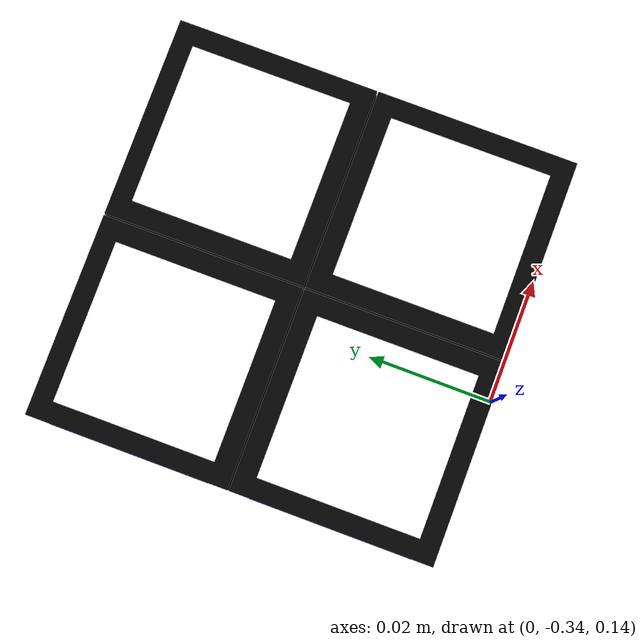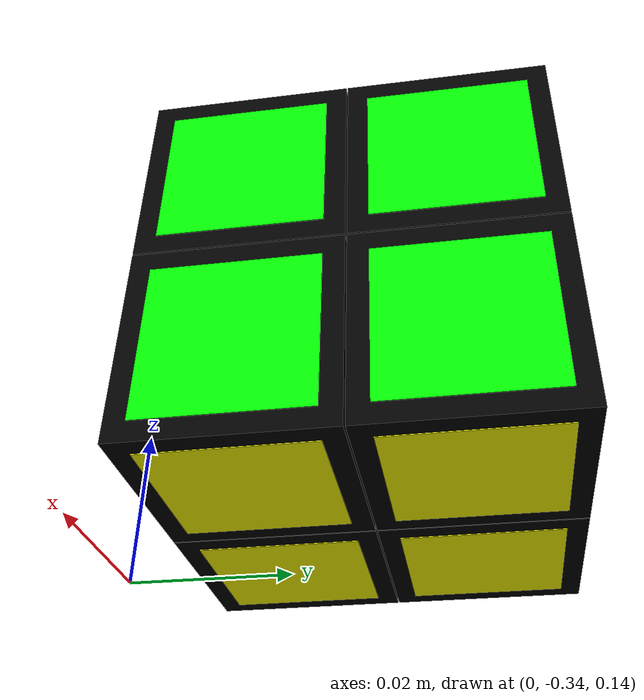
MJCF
<mujoco model="rubiks_cube">
    <asset>
        <texture type="cube" name="tex" builtin="checker" width="100" height="100" rgb1="1 1 1" rgb2="0 0 0"/>
        <material name="mat" texture="tex" specular="1" shininess="0.5"/>
    </asset>

    <worldbody>
        <!-- Center link -->
        <body name="center" pos="0 -0.31 0.17">
            <joint type="free"/>
            <inertial pos="0 0 0" quat="0.0111438 0.707126 -0.00935374 0.706938" mass="5.204" diaginertia="0.0447997 0.0366257 0.0162187" />
            <!-- Each box with its respective visuals, collisions, and inertial properties -->
            <body name="box_0_0_0" pos="-0.0126 -0.0126 -0.0126">
                <joint name="joint_ball_0_0_0" pos="0.0126 0.0126 0.0126" type="hinge" axis="1 0 0" />
                <inertial mass="0.03" pos="0 0 0" diaginertia="0.0003125 0.0003125 0.0003125"/>
                <geom type="box" size="0.0125 0.0125 0.0125" rgba="0 0 0 1"/>
                <geom type="box" pos="-0.0125 0 0" size="0.0001 0.01 0.01" rgba="0 0 1 1"/>
                <geom type="box" pos="0 -0.0125 0" size="0.01 0.0001 0.01" rgba="1 0.5 0 1"/>
                <geom type="box" pos="0 0 -0.0125" size="0.01 0.01 0.0001" rgba="1 1 0 1"/>
            </body>
            <body name="box_1_1_0" pos="0.0126 0.0126 -0.0126">
                <joint name="joint_ball_1_1_0" pos="-0.0126 -0.0126 0.0126" type="hinge" axis="0 1 0" />
                <inertial mass="0.03" pos="0 0 0" diaginertia="0.0003125 0.0003125 0.0003125"/>
                <geom type="box" size="0.0125 0.0125 0.0125" rgba="0 0 0 1"/>
                <geom type="box" pos="0.0125 0 0" size="0.0001 0.01 0.01" rgba="0 1 0 1"/>
                <geom type="box" pos="0 0.0125 0" size="0.01 0.0001 0.01" rgba="1 0 0 1"/>
                <geom type="box" pos="0 0 -0.0125" size="0.01 0.01 0.0001" rgba="1 1 0 1"/>
            </body>
            <body name="box_1_0_1" pos="0.0126 -0.0126 0.0126">
                <joint name="joint_ball_1_0_1" pos="-0.0126 0.0126 -0.0126" type="hinge" axis="0 0 1"/>
                <inertial mass="0.01" pos="0 0 0" diaginertia="0.0003125 0.0003125 0.0003125"/>
                <geom type="box" size="0.0125 0.0125 0.0125" rgba="0 0 0 1"/>
                <geom type="box" pos="0.0125 0 0" size="0.0001 0.01 0.01" rgba="0 1 0 1"/>
                <geom type="box" pos="0 -0.0125 0" size="0.01 0.0001 0.01" rgba="1 0.5 0 1"/>
                <geom type="box" pos="0 0 0.0125" size="0.01 0.01 0.0001" rgba="1 1 1 1"/>
            </body>

            <body name="box_1_0_0" pos="0.0126 -0.0126 -0.0126">
                <joint name="joint_ball_1_0_0" pos="-0.0126 0.0126 0.0126" type="ball"/>
                <inertial mass="0.05" pos="0 0 0" diaginertia="0.0003125 0.0003125 0.0003125"/>
                <geom type="box" size="0.0125 0.0125 0.0125" rgba="0 0 0 1"/>
                <geom type="box" pos="0.0125 0 0" size="0.0001 0.01 0.01" rgba="0 1 0 1"/>
                <geom type="box" pos="0 -0.0125 0" size="0.01 0.0001 0.01" rgba="1 0.5 0 1"/>
                <geom type="box" pos="0 0 -0.0125" size="0.01 0.01 0.0001" rgba="1 1 0 1"/>
            </body>

            <body name="box_0_1_0" pos="-0.0126 0.0126 -0.0126">
                <joint name="joint_ball_0_1_0" pos="0.0126 -0.0126 0.0126" type="ball"/>
                <inertial mass="0.05" pos="0 0 0" diaginertia="0.0003125 0.0003125 0.0003125"/>
                <geom type="box" size="0.0125 0.0125 0.0125" rgba="0 0 0 1"/>
                <geom type="box" pos="-0.0125 0 0" size="0.0001 0.01 0.01" rgba="0 0 1 1"/>
                <geom type="box" pos="0 0.0125 0" size="0.01 0.0001 0.01" rgba="1 0 0 1"/>
                <geom type="box" pos="0 0 -0.0125" size="0.01 0.01 0.0001" rgba="1 1 0 1"/>
            </body>

            <body name="box_0_0_1" pos="-0.0126 -0.0126 0.0126">
                <joint name="joint_ball_0_0_1" pos="0.0126 0.0126 -0.0126" type="ball"/>
                <inertial mass="0.05" pos="0 0 0" diaginertia="0.0003125 0.0003125 0.0003125"/>
                <geom type="box" size="0.0125 0.0125 0.0125" rgba="0 0 0 1"/>
                <geom type="box" pos="-0.0125 0 0" size="0.0001 0.01 0.01" rgba="0 0 1 1"/>
                <geom type="box" pos="0 -0.0125 0" size="0.01 0.0001 0.01" rgba="1 0.5 0 1"/>
                <geom type="box" pos="0 0 0.0125" size="0.01 0.01 0.0001" rgba="1 1 1 1"/>
            </body>

            <body name="box_0_1_1" pos="-0.0126 0.0126 0.0126">
                <joint name="joint_ball_0_1_1" pos="0.0126 -0.0126 -0.0126" type="ball"/>
                <inertial mass="0.05" pos="0 0 0" diaginertia="0.0003125 0.0003125 0.0003125"/>
                <geom type="box" size="0.0125 0.0125 0.0125" rgba="0 0 0 1"/>
                <geom type="box" pos="-0.0125 0 0" size="0.0001 0.01 0.01" rgba="0 0 1 1"/>
                <geom type="box" pos="0 0.0125 0" size="0.01 0.0001 0.01" rgba="1 0 0 1"/>
                <geom type="box" pos="0 0 0.0125" size="0.01 0.01 0.0001" rgba="1 1 1 1"/>
            </body>

            <body name="box_1_1_1" pos="0.0126 0.0126 0.0126">
                <joint name="joint_ball_1_1_1" pos="-0.0126 -0.0126 -0.0126" type="ball"/>
                <inertial mass="0.05" pos="0 0 0" diaginertia="0.0003125 0.0003125 0.0003125"/>
                <geom type="box" size="0.0125 0.0125 0.0125" rgba="0 0 0 1"/>
                <geom type="box" pos="0.0125 0 0" size="0.0001 0.01 0.01" rgba="0 1 0 1"/>
                <geom type="box" pos="0 0.0125 0" size="0.01 0.0001 0.01" rgba="1 0 0 1"/>
                <geom type="box" pos="0 0 0.0125" size="0.01 0.01 0.0001" rgba="1 1 1 1"/>
            </body>
        </body>
    </worldbody>

</mujoco>
